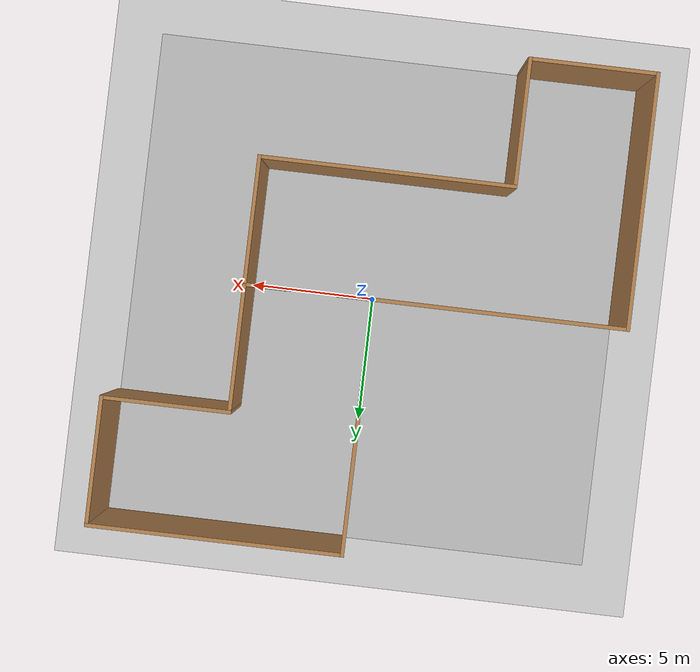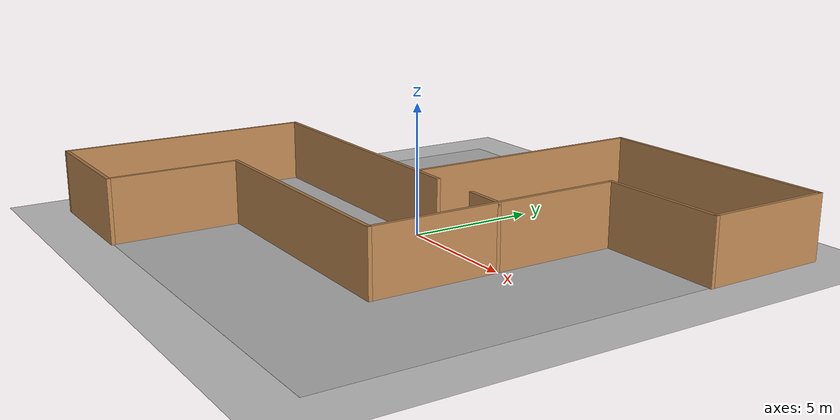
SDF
<sdf version="1.6">
 <world name="default">
  <light name="sun" type="directional">
   <pose>0 0 10 0 -0 0</pose>
   <diffuse>0.8 0.8 0.8 1</diffuse>
   <specular>0.2 0.2 0.2 1</specular>
   <attenuation>
    <range>1000</range>
    <constant>0.9</constant>
    <linear>0.01</linear>
    <quadratic>0.001</quadratic>
   </attenuation>
   <direction>-0.5 0.1 -0.9</direction>
  </light>
  <model name="ground_plane">
   <static>1</static>
   <link name="link">
    <collision name="collision">
     <geometry><plane><normal>0 0 1</normal><size>100 100</size></plane></geometry>
     <surface>
      <contact><collide_bitmask>65535</collide_bitmask></contact>
      <friction><ode><mu>100</mu><mu2>50</mu2></ode></friction>
     </surface>
    </collision>
    <visual name="visual">
     <cast_shadows>0</cast_shadows>
     <geometry><plane><normal>0 0 1</normal><size>100 100</size></plane></geometry>
     <material>
      <script><uri>file://media/materials/scripts/gazebo.material</uri><name>Gazebo/Grey</name></script>
     </material>
    </visual>
   </link>
  </model>
  <gravity>0 0 -9.8</gravity>
  <magnetic_field>6e-06 2.3e-05 -4.2e-05</magnetic_field>
  <atmosphere type="adiabatic"/>
  <physics name="default_physics" default="0" type="ode">
   <max_step_size>0.001</max_step_size>
   <real_time_factor>1</real_time_factor>
   <real_time_update_rate>1000</real_time_update_rate>
  </physics>
  <scene><ambient>0.4 0.4 0.4 1</ambient><background>0.7 0.7 0.7 1</background><shadows>1</shadows></scene>
  <audio><device>default</device></audio>
  <spherical_coordinates>
   <surface_model>EARTH_WGS84</surface_model>
   <latitude_deg>0</latitude_deg>
   <longitude_deg>0</longitude_deg>
   <elevation>0</elevation>
   <heading_deg>0</heading_deg>
  </spherical_coordinates>
  <model name="Floor_room">
   <link name="main">
    <pose>0 0 0.01 0 -0 0</pose>
    <collision name="main_Collision"><geometry><box><size>20 20 0.001</size></box></geometry></collision>
    <visual name="main_Visual">
     <geometry><box><size>20 20 0.001</size></box></geometry>
     <material>
      <script>
       <uri>model://Floor_room/materials/scripts</uri>
       <uri>model://Floor_room/materials/textures</uri>
       <name>floor_room</name>
      </script>
     </material>
    </visual>
   </link>
   <static>1</static>
  </model>
  <model name="Mshape1">
   <link name="Wall_22">
    <collision name="Wall_22_Collision">
     <geometry><box><size>10.15 0.15 2.5</size></box></geometry>
     <pose>0 0 1.25 0 -0 0</pose>
    </collision>
    <visual name="Wall_22_Visual">
     <pose>0 0 1.25 0 -0 0</pose>
     <geometry><box><size>10.15 0.15 2.5</size></box></geometry>
     <material>
      <script><uri>file://media/materials/scripts/gazebo.material</uri><name>Gazebo/Wood</name></script>
      <ambient>1 1 1 1</ambient>
     </material>
     <meta><layer>0</layer></meta>
    </visual>
    <pose>-10 -5 0 0 -0 1.5708</pose>
   </link>
   <link name="Wall_24">
    <collision name="Wall_24_Collision">
     <geometry><box><size>10.15 0.15 2.5</size></box></geometry>
     <pose>0 0 1.25 0 -0 0</pose>
    </collision>
    <visual name="Wall_24_Visual">
     <pose>0 0 1.25 0 -0 0</pose>
     <geometry><box><size>10.15 0.15 2.5</size></box></geometry>
     <material>
      <script><uri>file://media/materials/scripts/gazebo.material</uri><name>Gazebo/Wood</name></script>
      <ambient>1 1 1 1</ambient>
     </material>
     <meta><layer>0</layer></meta>
    </visual>
    <pose>-5 0 0 0 -0 0</pose>
   </link>
   <link name="Wall_26">
    <collision name="Wall_26_Collision">
     <geometry><box><size>10.15 0.15 2.5</size></box></geometry>
     <pose>0 0 1.25 0 -0 0</pose>
    </collision>
    <visual name="Wall_26_Visual">
     <pose>0 0 1.25 0 -0 0</pose>
     <geometry><box><size>10.15 0.15 2.5</size></box></geometry>
     <material>
      <script><uri>file://media/materials/scripts/gazebo.material</uri><name>Gazebo/Wood</name></script>
      <ambient>1 1 1 1</ambient>
     </material>
     <meta><layer>0</layer></meta>
    </visual>
    <pose>0 5 0 0 -0 1.5708</pose>
   </link>
   <link name="Wall_28">
    <collision name="Wall_28_Collision">
     <geometry><box><size>10.15 0.15 2.5</size></box></geometry>
     <pose>0 0 1.25 0 -0 0</pose>
    </collision>
    <visual name="Wall_28_Visual">
     <pose>0 0 1.25 0 -0 0</pose>
     <geometry><box><size>10.15 0.15 2.5</size></box></geometry>
     <material>
      <script><uri>file://media/materials/scripts/gazebo.material</uri><name>Gazebo/Wood</name></script>
      <ambient>1 1 1 1</ambient>
     </material>
     <meta><layer>0</layer></meta>
    </visual>
    <pose>5 10 0 0 -0 0</pose>
   </link>
   <link name="Wall_30">
    <collision name="Wall_30_Collision">
     <geometry><box><size>5.15 0.15 2.5</size></box></geometry>
     <pose>0 0 1.25 0 -0 0</pose>
    </collision>
    <visual name="Wall_30_Visual">
     <pose>0 0 1.25 0 -0 0</pose>
     <geometry><box><size>5.15 0.15 2.5</size></box></geometry>
     <material>
      <script><uri>file://media/materials/scripts/gazebo.material</uri><name>Gazebo/Wood</name></script>
      <ambient>1 1 1 1</ambient>
     </material>
     <meta><layer>0</layer></meta>
    </visual>
    <pose>10 7.5 0 0 -0 -1.5708</pose>
   </link>
   <link name="Wall_32">
    <collision name="Wall_32_Collision">
     <geometry><box><size>5.15 0.15 2.5</size></box></geometry>
     <pose>0 0 1.25 0 -0 0</pose>
    </collision>
    <visual name="Wall_32_Visual">
     <pose>0 0 1.25 0 -0 0</pose>
     <geometry><box><size>5.15 0.15 2.5</size></box></geometry>
     <material>
      <script><uri>file://media/materials/scripts/gazebo.material</uri><name>Gazebo/Wood</name></script>
      <ambient>1 1 1 1</ambient>
     </material>
     <meta><layer>0</layer></meta>
    </visual>
    <pose>7.5 5 0 0 -0 3.14159</pose>
   </link>
   <link name="Wall_34">
    <collision name="Wall_34_Collision">
     <geometry><box><size>10.15 0.15 2.5</size></box></geometry>
     <pose>0 0 1.25 0 -0 0</pose>
    </collision>
    <visual name="Wall_34_Visual">
     <pose>0 0 1.25 0 -0 0</pose>
     <geometry><box><size>10.15 0.15 2.5</size></box></geometry>
     <material>
      <script><uri>file://media/materials/scripts/gazebo.material</uri><name>Gazebo/Wood</name></script>
      <ambient>1 1 1 1</ambient>
     </material>
     <meta><layer>0</layer></meta>
    </visual>
    <pose>5 0 0 0 -0 -1.5708</pose>
   </link>
   <link name="Wall_36">
    <collision name="Wall_36_Collision">
     <geometry><box><size>1.5 0.15 2.5</size></box></geometry>
     <pose>0 0 1.25 0 -0 0</pose>
    </collision>
    <visual name="Wall_36_Visual">
     <pose>0 0 1.25 0 -0 0</pose>
     <geometry><box><size>1.5 0.15 2.5</size></box></geometry>
     <material>
      <script><uri>file://media/materials/scripts/gazebo.material</uri><name>Gazebo/Wood</name></script>
      <ambient>1 1 1 1</ambient>
     </material>
     <meta><layer>0</layer></meta>
    </visual>
    <pose>0.675 0 0 0 -0 0</pose>
   </link>
   <link name="Wall_38">
    <collision name="Wall_38_Collision">
     <geometry><box><size>1.65 0.15 2.5</size></box></geometry>
     <pose>0 0 1.25 0 -0 0</pose>
    </collision>
    <visual name="Wall_38_Visual">
     <pose>0 0 1.25 0 -0 0</pose>
     <geometry><box><size>1.65 0.15 2.5</size></box></geometry>
     <material>
      <script><uri>file://media/materials/scripts/gazebo.material</uri><name>Gazebo/Wood</name></script>
      <ambient>1 1 1 1</ambient>
     </material>
     <meta><layer>0</layer></meta>
    </visual>
    <pose>4.25 0 0 0 -0 3.14159</pose>
   </link>
   <link name="Wall_40">
    <collision name="Wall_40_Collision">
     <geometry><box><size>10.15 0.15 2.5</size></box></geometry>
     <pose>0 0 1.25 0 -0 0</pose>
    </collision>
    <visual name="Wall_40_Visual">
     <pose>0 0 1.25 0 -0 0</pose>
     <geometry><box><size>10.15 0.15 2.5</size></box></geometry>
     <material>
      <script><uri>file://media/materials/scripts/gazebo.material</uri><name>Gazebo/Wood</name></script>
      <ambient>1 1 1 1</ambient>
     </material>
     <meta><layer>0</layer></meta>
    </visual>
    <pose>0 -5 0 0 -0 3.14159</pose>
   </link>
   <link name="Wall_42">
    <collision name="Wall_42_Collision">
     <geometry><box><size>5.15 0.15 2.5</size></box></geometry>
     <pose>0 0 1.25 0 -0 0</pose>
    </collision>
    <visual name="Wall_42_Visual">
     <pose>0 0 1.25 0 -0 0</pose>
     <geometry><box><size>5.15 0.15 2.5</size></box></geometry>
     <material>
      <script><uri>file://media/materials/scripts/gazebo.material</uri><name>Gazebo/Wood</name></script>
      <ambient>1 1 1 1</ambient>
     </material>
     <meta><layer>0</layer></meta>
    </visual>
    <pose>-5 -7.5 0 0 -0 -1.5708</pose>
   </link>
   <link name="Wall_44">
    <collision name="Wall_44_Collision">
     <geometry><box><size>5.15 0.15 2.5</size></box></geometry>
     <pose>0 0 1.25 0 -0 0</pose>
    </collision>
    <visual name="Wall_44_Visual">
     <pose>0 0 1.25 0 -0 0</pose>
     <geometry><box><size>5.15 0.15 2.5</size></box></geometry>
     <material>
      <script><uri>file://media/materials/scripts/gazebo.material</uri><name>Gazebo/Wood</name></script>
      <ambient>1 1 1 1</ambient>
     </material>
     <meta><layer>0</layer></meta>
    </visual>
    <pose>-7.5 -10 0 0 -0 3.14159</pose>
   </link>
   <static>1</static>
  </model>
 </world>
</sdf>
